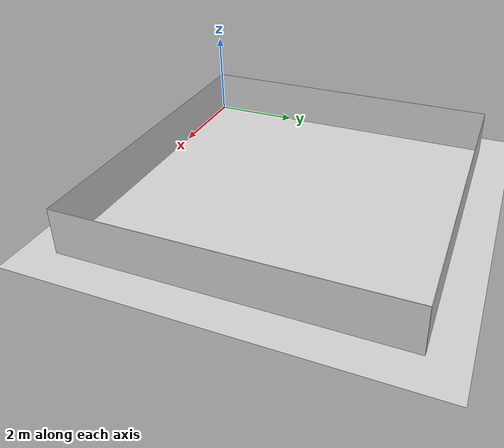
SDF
<?xml version="1.0" ?>
<sdf version="1.6">
  <world name="circuito_cuadrado">
    <!-- Configuración del entorno -->
    <include>
      <uri>model://sun</uri>
    </include>
    <include>
      <uri>model://ground_plane</uri>
    </include>

    <!-- Pared izquierda -->
    <model name="wall_left">
      <static>true</static>
      <link name="link">
        <visual name="visual">
          <geometry>
            <box>
              <size>7 0.01 1</size>
            </box>
          </geometry>
          <material>
            <ambient>1 1 1 1</ambient>
          </material>
        </visual>
        <collision name="collision">
          <geometry>
            <box>
              <size>7 0.01 1</size>
            </box>
          </geometry>
        </collision>
      </link>
      <pose>0 3.5 0.5 0 0 1.5708</pose>
    </model>

    <!-- Pared derecha -->
    <model name="wall_right">
      <static>true</static>
      <link name="link">
        <visual name="visual">
          <geometry>
            <box>
              <size>7 0.01 1</size>
            </box>
          </geometry>
          <material>
            <ambient>1 1 1 1</ambient>
          </material>
        </visual>
        <collision name="collision">
          <geometry>
            <box>
              <size>7 0.01 1</size>
            </box>
          </geometry>
        </collision>
      </link>
      <pose>7 3.5 0.5 0 0 1.5708</pose>
    </model>

    <!-- Pared superior -->
    <model name="wall_top">
      <static>true</static>
      <link name="link">
        <visual name="visual">
          <geometry>
            <box>
              <size>7 0.01 1</size>
            </box>
          </geometry>
          <material>
            <ambient>1 1 1 1</ambient>
          </material>
        </visual>
        <collision name="collision">
          <geometry>
            <box>
              <size>7 0.01 1</size>
            </box>
          </geometry>
        </collision>
      </link>
      <pose>3.5 7 0.5 0 0 0</pose>
    </model>

    <!-- Pared inferior -->
    <model name="wall_bottom">
      <static>true</static>
      <link name="link">
        <visual name="visual">
          <geometry>
            <box>
              <size>7 0.01 1</size>
            </box>
          </geometry>
          <material>
            <ambient>1 1 1 1</ambient>
          </material>
        </visual>
        <collision name="collision">
          <geometry>
            <box>
              <size>7 0.01 1</size>
            </box>
          </geometry>
        </collision>
      </link>
      <pose>3.5 0 0.5 0 0 0</pose>
    </model>
  </world>
</sdf>
